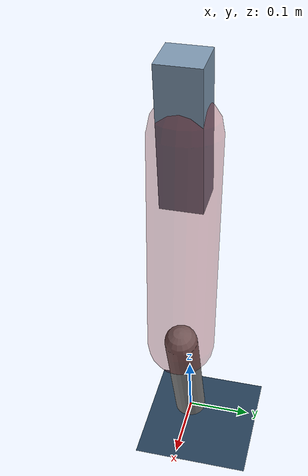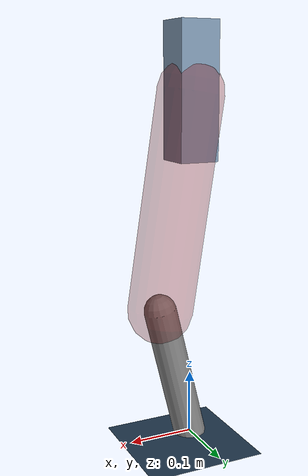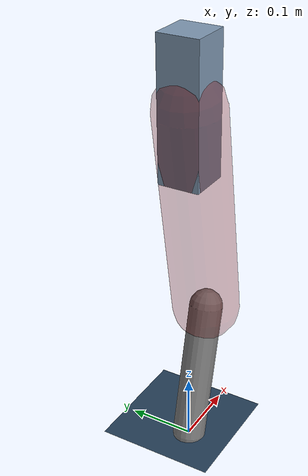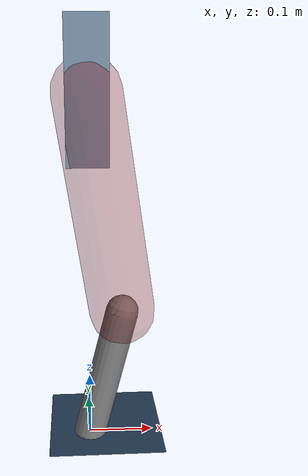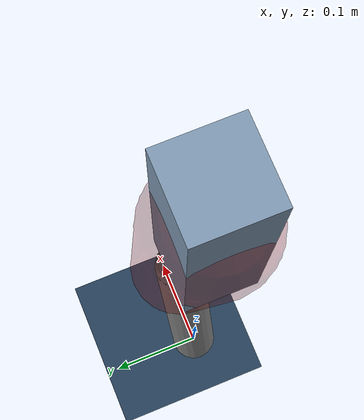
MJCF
<mujoco model="Hopper2D">
	<compiler inertiafromgeom="true" angle="radian" />
	<option timestep="0.001" integrator="implicit" cone="elliptic" solver="Newton" tolerance="1e-10" />

	<default>
		<geom contype="1" conaffinity="1" condim="3" friction="2 0.005 0.0001" solref="0.005 1" />
		<joint limited="true" damping="0.1" />
	</default>

	<asset>
		<texture name="skybox" type="skybox" builtin="gradient" rgb1=".4 .6 .8" rgb2="0 0 0" width="800" height="800" />
		<texture name="grid" type="2d" builtin="checker" rgb1=".1 .2 .3" rgb2=".2 .3 .4" width="300" height="300" mark="edge" markrgb=".2 .3 .4" />
		<material name="ground" texture="grid" texrepeat="1 1" texuniform="true" reflectance="0.1" />
		<material name="leg" rgba="0.5 0.6 0.7 1" />
	</asset>

	<worldbody>

		<geom name="floor" type="plane" size="5 5 0.25" material="ground" />

		<light directional="false" diffuse="0.8 0.8 0.8" specular="0.3 0.3 0.3" pos="0 0 2" dir="0 0 -1" />
		<light mode="targetbodycom" target="base" directional="false" diffuse="0.8 0.8 0.8" specular="0.3 0.3 0.3" pos="0 0 2" dir="0 0 -1" />

		<camera name="fixed" pos="0 -2 1" xyaxes="1 0 0 0 0 1" />
		<camera name="tracking" mode="trackcom" pos="0 -3 1" />

		<body name="root" pos="0 0 0.5338132148195651">
			<joint name="slide_x" type="slide" axis="1 0 0" range="-100 100" />
			<joint name="slide_z" type="slide" axis="0 0 1" range="0 10" />

			<body name="base" pos="0 0 0">
				<geom name="torso" type="box" size="0.03 0.03 0.1" mass="2.476" material="leg" />

				<body name="link1" pos="0 0 0" euler="0 1.4161554918065957 0">
					<joint type="hinge" axis="0 -1 0" pos="0 0 0" name="hinge1" limited="true" range="-3.14 3.14" stiffness="0" damping="0.1" />
					<geom name="thigh" type="capsule" fromto="0 0 0 0.329145967195478 0 0" size="0.05" rgba="0.5 0 0 0.3" mass="1.0684941114277906" />

					<body name="link2" pos="0.329145967195478 0 0" euler="0 0.3930576286452732 0">
						<joint type="hinge" axis="0 -1 0" pos="0 0 0" name="hinge2" limited="true" range="-3.14 3.14" stiffness="0" damping="0.1" />
						<geom name="shank" type="capsule" fromto="0 0 0 0.21466724762408718 0 0" size="0.025" mass="0.41323379809926974" />

					</body>
				</body>
			</body>
		</body>
	</worldbody>

	<actuator>
		<motor name="torque1" joint="hinge1" ctrlrange="-96.67642499523359 96.67642499523359" ctrllimited="true" gear="1" />
		<motor name="torque2" joint="hinge2" ctrlrange="-34.7379740200247 34.7379740200247" ctrllimited="true" gear="1" />
	</actuator>
</mujoco>
